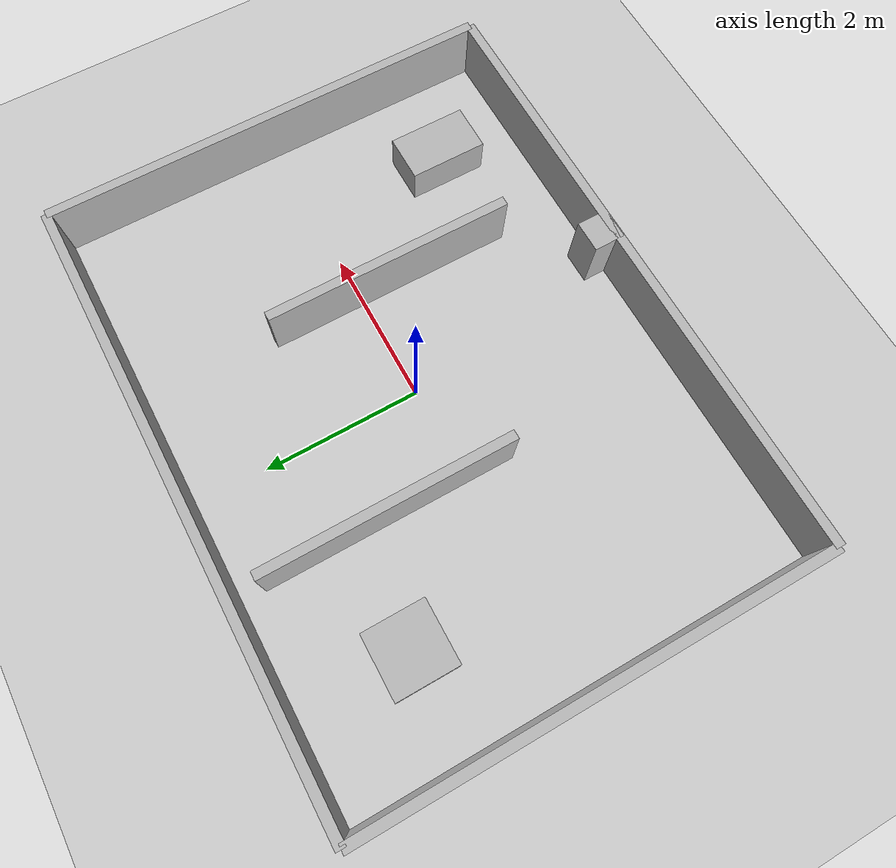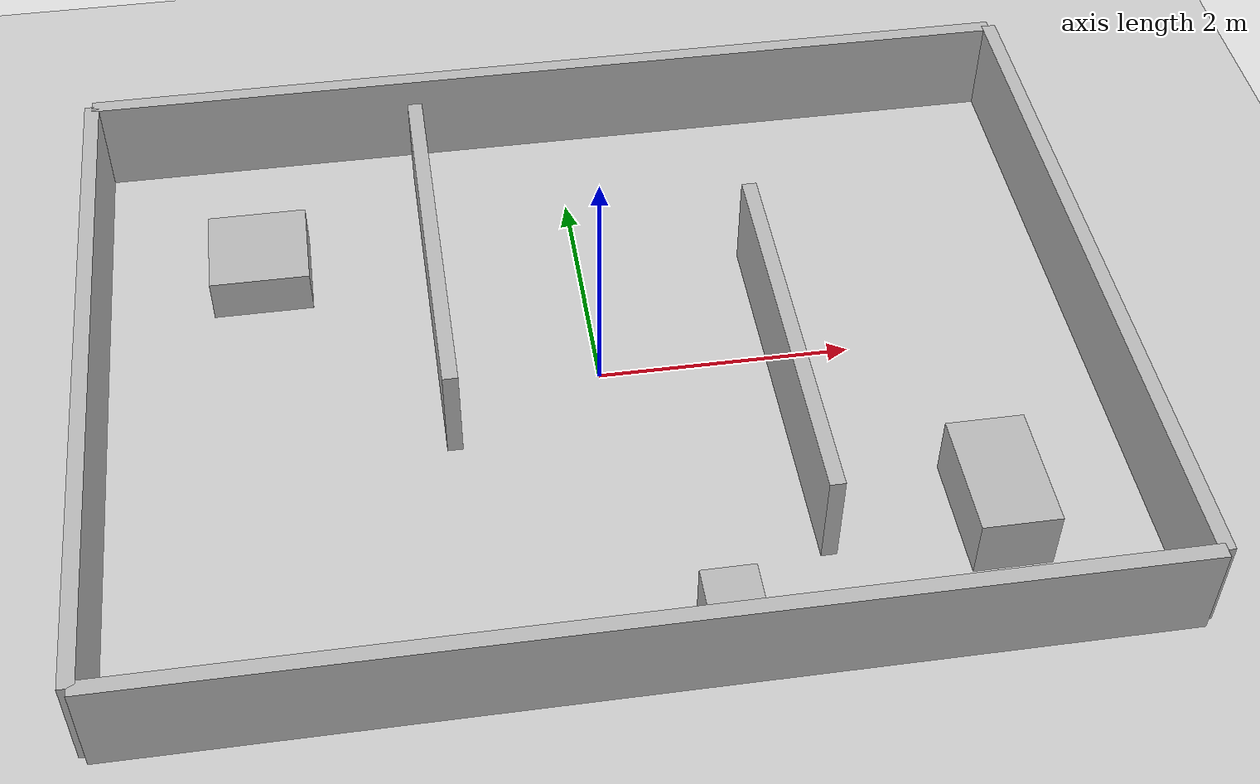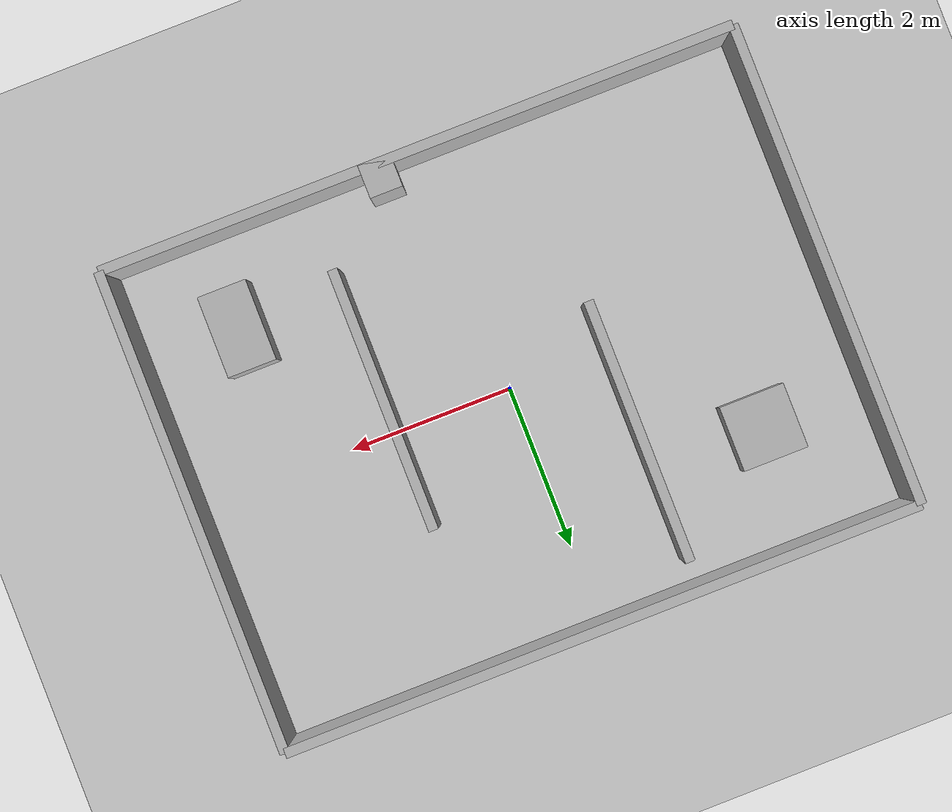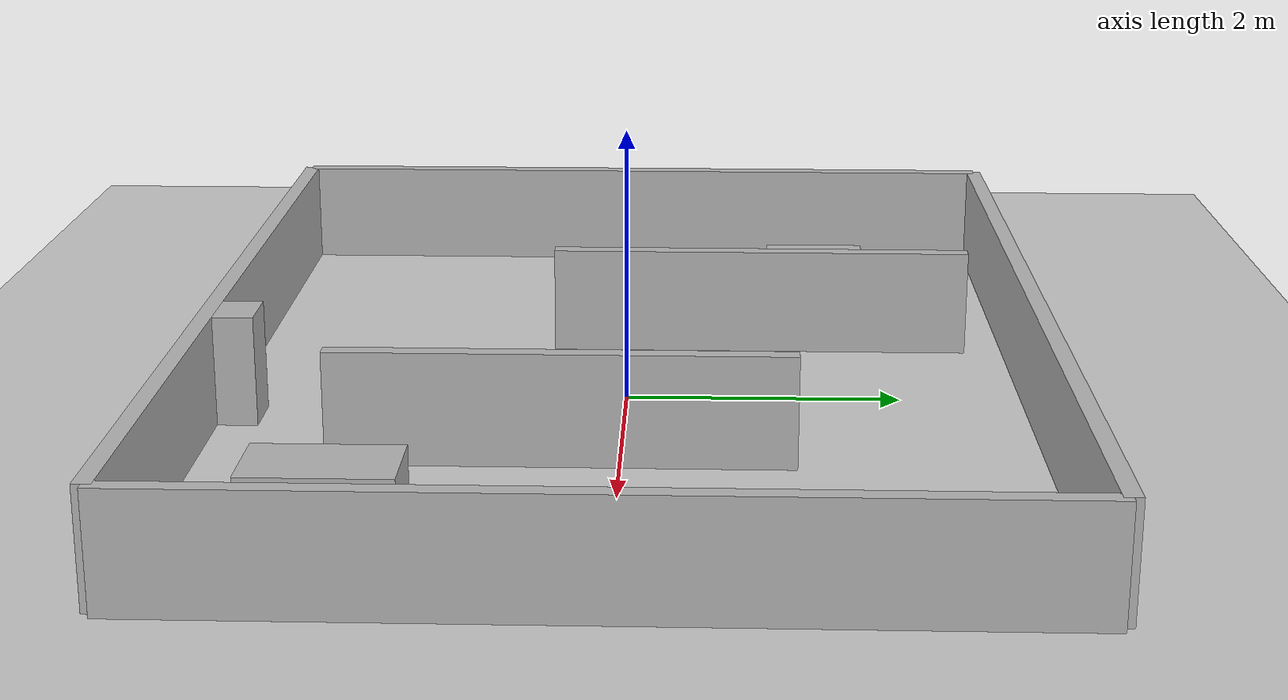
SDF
<?xml version="1.0" ?>
<sdf version="1.6">
  <world name="three_room_house">
    <include>
      <uri>model://sun</uri>
    </include>
    <include>
      <uri>model://ground_plane</uri>
    </include>

    <!-- 每个 link 一面墙/一件家具：pose 是中心点坐标（米），
         box size 是长宽高。轻量仿真只取 x/y 平面投影。 -->
    <model name="house_shell">
      <static>true</static>

      <link name="north_wall">
        <pose>0 2.95 0.4 0 0 0</pose>
        <collision name="collision"><geometry><box><size>7.8 0.12 0.8</size></box></geometry></collision>
        <visual name="visual"><geometry><box><size>7.8 0.12 0.8</size></box></geometry></visual>
      </link>

      <link name="south_wall">
        <pose>0 -2.95 0.4 0 0 0</pose>
        <collision name="collision"><geometry><box><size>7.8 0.12 0.8</size></box></geometry></collision>
        <visual name="visual"><geometry><box><size>7.8 0.12 0.8</size></box></geometry></visual>
      </link>

      <link name="west_wall">
        <pose>-3.9 0 0.4 0 0 0</pose>
        <collision name="collision"><geometry><box><size>0.12 5.9 0.8</size></box></geometry></collision>
        <visual name="visual"><geometry><box><size>0.12 5.9 0.8</size></box></geometry></visual>
      </link>

      <link name="east_wall">
        <pose>3.9 0 0.4 0 0 0</pose>
        <collision name="collision"><geometry><box><size>0.12 5.9 0.8</size></box></geometry></collision>
        <visual name="visual"><geometry><box><size>0.12 5.9 0.8</size></box></geometry></visual>
      </link>

      <link name="hall_divider_left">
        <pose>-1.2 1.0 0.4 0 0 0</pose>
        <collision name="collision"><geometry><box><size>0.12 3.2 0.8</size></box></geometry></collision>
        <visual name="visual"><geometry><box><size>0.12 3.2 0.8</size></box></geometry></visual>
      </link>

      <link name="hall_divider_right">
        <pose>1.4 -0.4 0.4 0 0 0</pose>
        <collision name="collision"><geometry><box><size>0.12 3.2 0.8</size></box></geometry></collision>
        <visual name="visual"><geometry><box><size>0.12 3.2 0.8</size></box></geometry></visual>
      </link>

      <link name="table">
        <pose>-2.6 1.5 0.18 0 0 0</pose>
        <collision name="collision"><geometry><box><size>0.8 0.8 0.36</size></box></geometry></collision>
        <visual name="visual"><geometry><box><size>0.8 0.8 0.36</size></box></geometry></visual>
      </link>

      <link name="cabinet">
        <pose>2.7 -1.8 0.25 0 0 0</pose>
        <collision name="collision"><geometry><box><size>0.6 1.0 0.5</size></box></geometry></collision>
        <visual name="visual"><geometry><box><size>0.6 1.0 0.5</size></box></geometry></visual>
      </link>

      <link name="pillar">
        <pose>0.5 -2.8 0.4 0 0 0</pose>
        <collision name="collision"><geometry><box><size>0.4 0.4 0.8</size></box></geometry></collision>
        <visual name="visual"><geometry><box><size>0.4 0.4 0.8</size></box></geometry></visual>
      </link>
    </model>
  </world>
</sdf>
